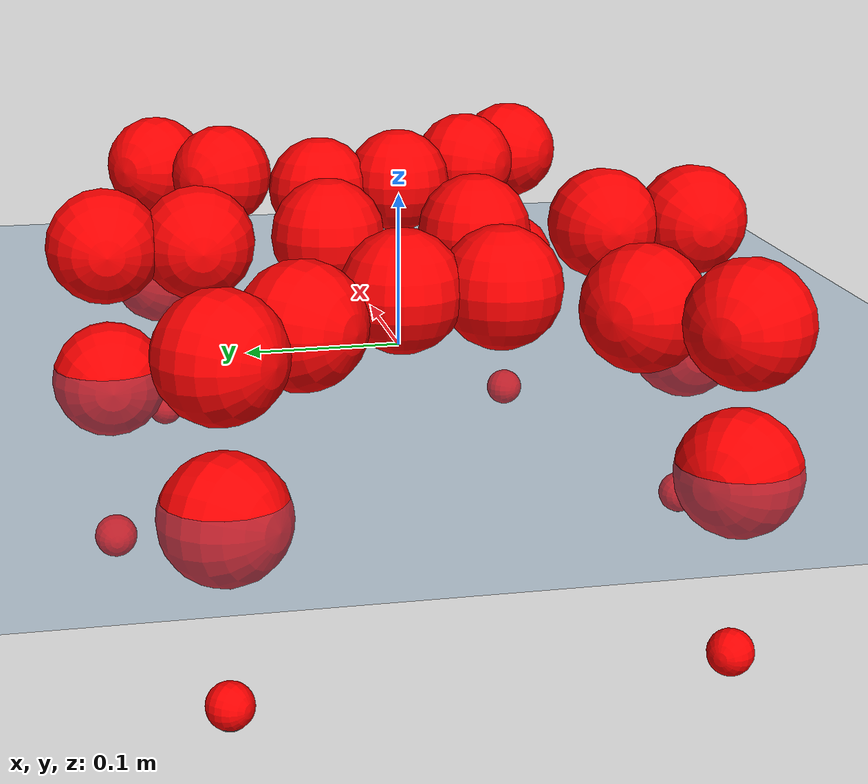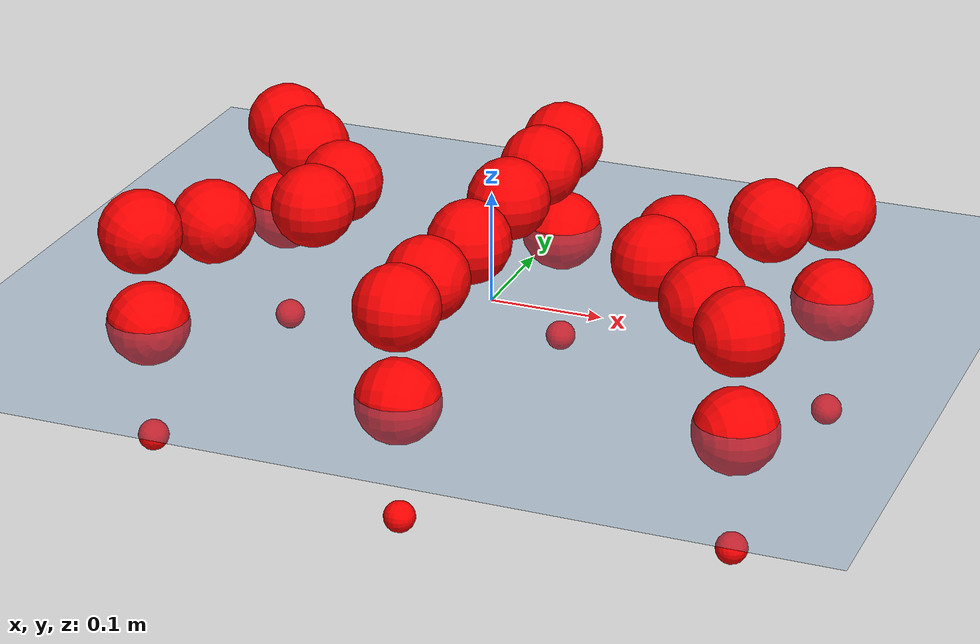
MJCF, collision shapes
<mujoco model="Golem">
  <compiler angle="radian" assetdir="assets" balanceinertia="true" inertiafromgeom="false"/>

  <option timestep="0.005" density="1.2" viscosity="2e-05"/>

  <size nkey="1"/>

  <visual>
    <quality shadowsize="8192"/>
    <map shadowclip="0.5"/>
  </visual>

  <default>
    <default class="/">
      <joint armature="0.01" damping="0.01" frictionloss="0.01"/>
      <geom contype="0" conaffinity="0" group="1" solref="-1000 -80"/>
      <site size="0.01 0.005 0.005" group="5"/>
      <general forcelimited="true" biastype="affine" gainprm="25" biasprm="0 -25 -0.5"/>
      <default class="visual">
        <geom type="mesh" group="2"/>
      </default>
      <default class="collision">
        <geom group="3"/>
      </default>
      <default class="foot">
        <geom size="0.01 0 0" condim="6" group="4" priority="1" solimp="0.015 1 0.01"/>
      </default>
      <default class="reward_collision_sphere">
        <geom group="5" rgba="1 0 0 1"/>
      </default>
    </default>
  </default>

  <asset>
    <texture type="skybox" colorspace="auto" name="//unnamed_texture_0" builtin="gradient" rgb1="0.95 0.95 0.95" rgb2="0.95 0.95 0.95" width="100" height="600"/>
    <texture type="2d" colorspace="auto" name="texplane" builtin="checker" rgb1="0.345 0.575 0.748" rgb2="0.345 0.575 0.748" markrgb="1 1 1" width="512" height="512"/>
    <material name="MatPlane" class="/" texture="texplane" texuniform="true" texrepeat="2 2" specular="0.9"/>
    <mesh name="body" class="/" file="body.stl" scale="0.001 0.001 0.001"/>
    <mesh name="coxa" class="/" file="coxa.stl" scale="0.001 0.001 0.001"/>
    <mesh name="femur" class="/" file="femur.stl" scale="0.001 0.001 0.001"/>
    <mesh name="tibia" class="/" file="tibia.stl" scale="0.001 0.001 0.001"/>
    <mesh name="tarsus" class="/" file="tarsus.stl" scale="0.001 0.001 0.001"/>
  </asset>

  <worldbody>
    <geom name="floor" class="/" size="100 100 0.125" type="plane" group="0" material="MatPlane"/>
    <light name="toplight_shadow" class="/" pos="0 0 5" dir="0.0990148 0.0990148 -0.990148" type="directional" ambient="0.04 0.04 0.04" diffuse="0.55 0.55 0.55" specular="0.12 0.12 0.12"/>
    <light name="toplight_fill" class="/" pos="0 0 5" dir="0.0990148 0.0990148 -0.990148" type="directional" castshadow="false" ambient="0.04 0.04 0.04" diffuse="0.3 0.3 0.3" specular="0.08 0.08 0.08"/>
    <body name="trunk" pos="0.000452867 -0.000635563 0.00102246" quat="1 -0.000187186 0.000354138 -0.000320371">
      <inertial pos="0.00200808 -0.001519 -0.000826758" quat="1 7.23657e-05 -0.000656557 -0.000150705" mass="2.9026" diaginertia="0.0101651 0.000700459 0.0214102"/>
      <joint name="//unnamed_joint_0" type="free"/>
      <geom name="//unnamed_geom_1" class="/" pos="0 0 0.0738411" quat="1 0 0 0" type="mesh" rgba="0.9 0.9 0.9 1" mesh="body"/>
      <site name="imu" class="/" pos="0.130898 -0.00182653 0.103117" size="0.00909577"/>
      <camera name="track" class="/" pos="0 -1.16822 0" quat="0.707107 0.707107 0 0" mode="trackcom"/>
      <camera name="ego_camera" class="/" pos="0.128811 0 0.115377" quat="-0.5 -0.5 0.5 0.5"/>
      <body name="coxa_RR" pos="-0.175627 -0.0497411 0.0750547" quat="0.38283 -2.29271e-05 -0.000113594 -0.923819">
        <inertial pos="-0.000105016 -0.000188162 0.000725311" quat="0.999999 0.000322648 -0.00125813 -0.00100563" mass="0.149646" diaginertia="0.0095394 0.000677643 0.0202144"/>
        <joint name="coxa_joint_RR" class="/" pos="0 0 0" axis="-0.00867352 0.00416064 -0.999954" range="-3.15691 3.14173" armature="0.00889985" damping="0" frictionloss="0.00902628"/>
        <geom name="//unnamed_geom_2" class="/" type="mesh" rgba="0.2 0.2 0.2 1" mesh="coxa"/>
        <geom name="//unnamed_geom_3" class="reward_collision_sphere" size="0.0363831" pos="-0.0297256 0 0"/>
        <body name="femur_RR" pos="0.0612642 0.000974698 0.000839827" quat="0.500062 -0.499996 0.500059 0.499883">
          <inertial pos="-0.00106466 -0.000470299 -0.00036202" quat="0.999999 -0.00105986 -0.000751546 0.000538747" mass="0.147837" diaginertia="0.00958169 0.00066234 0.0199096"/>
          <joint name="femur_joint_RR" class="/" pos="0 0 0" axis="0.0123644 -0.00285411 -0.999919" range="-3.13893 3.11929" armature="0.00906684" damping="0" frictionloss="0.00889794"/>
          <geom name="//unnamed_geom_4" class="/" type="mesh" rgba="0.9 0.9 0.9 1" mesh="femur"/>
          <geom name="//unnamed_geom_5" class="reward_collision_sphere" size="0.0363831"/>
          <body name="tibia_RR" pos="-0.00078448 -0.0637441 -0.00161079" quat="-5.28153e-05 1 -9.77007e-06 -6.81085e-05">
            <inertial pos="-0.000483744 -0.00236747 0.00035267" quat="0.999918 0.0104727 -0.00549508 -0.00484297" mass="0.150655" diaginertia="0.00975576 0.000679208 0.0201065"/>
            <joint name="tibia_joint_RR" class="/" pos="0 0 0" axis="0.00677423 -0.000501044 0.999977" range="-3.11954 3.1593" armature="0.00910573" damping="0.00476059" frictionloss="0.00945491"/>
            <geom name="//unnamed_geom_6" class="/" type="mesh" rgba="0.2 0.2 0.2 1" mesh="tibia"/>
            <geom name="//unnamed_geom_7" class="reward_collision_sphere" size="0.0363831"/>
            <body name="tarsus_RR" pos="0.0852626 -0.00257925 -0.00115922" quat="1 3.82621e-05 8.61801e-05 8.5856e-05">
              <inertial pos="0.0595328 0.000800239 -0.00111842" quat="0.505789 0.491216 0.504563 0.498298" mass="0.155145" diaginertia="0.00972498 0.000689124 0.020079"/>
              <joint name="tarsus_joint_RR" class="/" pos="0 0 0" axis="-0.000744825 0.000276089 1" range="-3.15892 3.1493" armature="0.00956084" damping="0.00115191" frictionloss="0.00988245"/>
              <geom name="//unnamed_geom_8" class="/" type="mesh" rgba="0.9 0.9 0.9 1" mesh="tarsus"/>
              <geom name="foot_1" class="foot" size="0.00903576" pos="0.110975 0 0" quat="0 -0.707107 0 0.707107"/>
              <geom name="//unnamed_geom_10" class="reward_collision_sphere" size="0.0363831"/>
              <geom name="//unnamed_geom_11" class="reward_collision_sphere" size="0.0136436" pos="0.106517 0 0"/>
              <site name="foot_1" class="foot" pos="0.110975 0 0" quat="0 -0.707107 0 0.707107" size="0.00909577"/>
            </body>
          </body>
        </body>
      </body>
      <body name="coxa_RM" pos="-0.00115568 -0.0788326 0.0738831" quat="0.70694 0.00061229 0.000934968 -0.707272">
        <inertial pos="0.00148873 8.97147e-05 -0.00163468" quat="1 -4.28543e-05 -3.45676e-05 0.000109561" mass="0.152274" diaginertia="0.00959172 0.000695219 0.0202833"/>
        <joint name="coxa_joint_RM" class="/" pos="0 0 0" axis="0.00187093 -0.00118176 -0.999998" range="-3.12934 3.14382" armature="0.00975304" damping="0.0181514" frictionloss="0.00871344"/>
        <geom name="//unnamed_geom_12" class="/" type="mesh" rgba="0.2 0.2 0.2 1" mesh="coxa"/>
        <geom name="//unnamed_geom_13" class="reward_collision_sphere" size="0.0363831" pos="-0.0297256 0 0"/>
        <body name="femur_RM" pos="0.056294 -0.0027957 0.00127207" quat="0.499808 -0.500365 0.500035 0.499792">
          <inertial pos="0.00247099 -0.0008776 -0.000294372" quat="0.999989 0.00224453 0.00267065 -0.00313952" mass="0.145804" diaginertia="0.00899821 0.000659729 0.019211"/>
          <joint name="femur_joint_RM" class="/" pos="0 0 0" axis="-0.00447509 0.00371508 -0.999983" range="-3.13686 3.09082" armature="0.0086446" damping="0.0149473" frictionloss="0.00901943"/>
          <geom name="//unnamed_geom_14" class="/" type="mesh" rgba="0.9 0.9 0.9 1" mesh="femur"/>
          <geom name="//unnamed_geom_15" class="reward_collision_sphere" size="0.0363831"/>
          <body name="tibia_RM" pos="-3.91735e-05 -0.0606907 -0.000794412" quat="0.000182513 1 0.000213305 -5.92856e-05">
            <inertial pos="-0.000672702 0.00282379 0.00049847" quat="0.999996 -0.00155437 0.00154364 0.00150876" mass="0.148328" diaginertia="0.00950221 0.00067387 0.0202077"/>
            <joint name="tibia_joint_RM" class="/" pos="0 0 0" axis="-0.00151786 0.000237755 0.999999" range="-3.12991 3.15434" armature="0.00956973" damping="0.0208201" frictionloss="0.0091976"/>
            <geom name="//unnamed_geom_16" class="/" type="mesh" rgba="0.2 0.2 0.2 1" mesh="tibia"/>
            <geom name="//unnamed_geom_17" class="reward_collision_sphere" size="0.0363831"/>
            <body name="tarsus_RM" pos="0.0844411 -0.00158767 0.000420867" quat="1 -9.26178e-06 5.9091e-06 3.33951e-05">
              <inertial pos="0.0615808 -0.000221514 -0.00081044" quat="0.500594 0.501443 0.499773 0.498184" mass="0.155497" diaginertia="0.00954039 0.00068024 0.0211019"/>
              <joint name="tarsus_joint_RM" class="/" pos="0 0 0" axis="-0.0061869 -0.000956264 0.99998" range="-3.1719 3.09966" armature="0.00919427" damping="0.00723497" frictionloss="0.00835612"/>
              <geom name="//unnamed_geom_18" class="/" type="mesh" rgba="0.9 0.9 0.9 1" mesh="tarsus"/>
              <geom name="foot_2" class="foot" size="0.00947551" pos="0.110975 0 0" quat="0 -0.707107 0 0.707107"/>
              <geom name="//unnamed_geom_20" class="reward_collision_sphere" size="0.0363831"/>
              <geom name="//unnamed_geom_21" class="reward_collision_sphere" size="0.0136436" pos="0.106517 0 0"/>
              <site name="foot_2" class="foot" pos="0.110975 0 0" quat="0 -0.707107 0 0.707107" size="0.00909577"/>
            </body>
          </body>
        </body>
      </body>
      <body name="coxa_RF" pos="0.177031 -0.0507489 0.0765034" quat="0.923907 -0.000213022 0.000183527 -0.382616">
        <inertial pos="0.00113937 -0.00248887 0.00183006" quat="0.999928 -0.0119701 -0.00063432 -0.000747382" mass="0.144729" diaginertia="0.00949059 0.000668195 0.0201289"/>
        <joint name="coxa_joint_RF" class="/" pos="0 0 0" axis="-0.00572332 0.00124768 -0.999983" range="-3.08879 3.13866" armature="0.00820638" damping="0" frictionloss="0.00897453"/>
        <geom name="//unnamed_geom_22" class="/" type="mesh" rgba="0.2 0.2 0.2 1" mesh="coxa"/>
        <geom name="//unnamed_geom_23" class="reward_collision_sphere" size="0.0363831" pos="-0.0297256 0 0"/>
        <body name="femur_RF" pos="0.0599423 7.9352e-06 -0.000927555" quat="0.49992 -0.500026 0.500034 0.50002">
          <inertial pos="-0.00133118 0.00228365 0.000532483" quat="0.999986 0.00307585 -0.000756869 -0.00418582" mass="0.150726" diaginertia="0.00989118 0.000700018 0.0213701"/>
          <joint name="femur_joint_RF" class="/" pos="0 0 0" axis="-0.00016191 -0.000300392 -1" range="-3.14791 3.14151" armature="0.0091654" damping="0.00756008" frictionloss="0.00918274"/>
          <geom name="//unnamed_geom_24" class="/" type="mesh" rgba="0.9 0.9 0.9 1" mesh="femur"/>
          <geom name="//unnamed_geom_25" class="reward_collision_sphere" size="0.0363831"/>
          <body name="tibia_RF" pos="0.000552507 -0.0635878 -0.000578903" quat="-0.00010804 1 -5.05889e-05 0.000203149">
            <inertial pos="0.000144709 -0.000266994 -0.00263204" quat="0.999942 -0.00981816 -0.00436152 -0.000375178" mass="0.153072" diaginertia="0.00979863 0.000668463 0.0211671"/>
            <joint name="tibia_joint_RF" class="/" pos="0 0 0" axis="0.00551334 -0.0010202 0.999984" range="-3.14575 3.14168" armature="0.00905243" damping="0.0107807" frictionloss="0.00923512"/>
            <geom name="//unnamed_geom_26" class="/" type="mesh" rgba="0.2 0.2 0.2 1" mesh="tibia"/>
            <geom name="//unnamed_geom_27" class="reward_collision_sphere" size="0.0363831"/>
            <body name="tarsus_RF" pos="0.0872805 0.000495867 -0.000418201" quat="1 -0.000735386 -0.000134624 0.0002274">
              <inertial pos="0.0597568 -0.000659478 -0.00100219" quat="0.49944 0.501502 0.499458 0.499596" mass="0.152167" diaginertia="0.00974361 0.000664934 0.0199267"/>
              <joint name="tarsus_joint_RF" class="/" pos="0 0 0" axis="-0.000254272 0.00193354 0.999998" stiffness="0.0238699" range="-3.10613 3.13955" armature="0.0085928" damping="0" frictionloss="0.00878867"/>
              <geom name="//unnamed_geom_28" class="/" type="mesh" rgba="0.9 0.9 0.9 1" mesh="tarsus"/>
              <geom name="foot_3" class="foot" size="0.00943057" pos="0.110975 0 0" quat="0 -0.707107 0 0.707107"/>
              <geom name="//unnamed_geom_30" class="reward_collision_sphere" size="0.0363831"/>
              <geom name="//unnamed_geom_31" class="reward_collision_sphere" size="0.0136436" pos="0.106517 0 0"/>
              <site name="foot_3" class="foot" pos="0.110975 0 0" quat="0 -0.707107 0 0.707107" size="0.00909577"/>
            </body>
          </body>
        </body>
      </body>
      <body name="coxa_LR" pos="-0.174346 0.0502586 0.0754859" quat="0.382362 4.57501e-05 7.28608e-05 0.924013">
        <inertial pos="-0.0011192 -0.00210667 -0.000760254" quat="0.999969 0.00457446 0.00350749 -0.00530499" mass="0.14689" diaginertia="0.00969242 0.000656675 0.0194392"/>
        <joint name="coxa_joint_LR" class="/" pos="0 0 0" axis="-0.000855537 -0.00214288 -0.999997" range="-3.14505 3.13221" armature="0.0088093" damping="0.0180171" frictionloss="0.00934925"/>
        <geom name="//unnamed_geom_32" class="/" type="mesh" rgba="0.2 0.2 0.2 1" mesh="coxa"/>
        <geom name="//unnamed_geom_33" class="reward_collision_sphere" size="0.0363831" pos="-0.0297256 0 0"/>
        <body name="femur_LR" pos="0.0617087 -0.00355633 2.34339e-05" quat="0.500531 -0.499974 0.499531 0.499964">
          <inertial pos="-4.29544e-05 -0.00273213 -0.000511701" quat="1 2.09485e-05 -0.000198489 -0.000113529" mass="0.150353" diaginertia="0.00924523 0.000689405 0.0197766"/>
          <joint name="femur_joint_LR" class="/" pos="0 0 0" axis="0.0003166 0.000688223 1" range="-3.09443 3.13673" armature="0.00905946" damping="0" frictionloss="0.00909977"/>
          <geom name="//unnamed_geom_34" class="/" type="mesh" rgba="0.9 0.9 0.9 1" mesh="femur"/>
          <geom name="//unnamed_geom_35" class="reward_collision_sphere" size="0.0363831"/>
          <body name="tibia_LR" pos="0.00216454 -0.0656592 -0.00356582" quat="9.68533e-06 1 -2.10887e-05 -0.000137193">
            <inertial pos="0.000173355 -0.00172939 0.000378965" quat="0.999942 -0.00719322 0.00215517 0.00772696" mass="0.148449" diaginertia="0.00922238 0.000667634 0.0201987"/>
            <joint name="tibia_joint_LR" class="/" pos="0 0 0" axis="0.00121403 0.00155167 -0.999998" range="-3.13521 3.18628" armature="0.00861202" damping="0" frictionloss="0.00912077"/>
            <geom name="//unnamed_geom_36" class="/" type="mesh" rgba="0.2 0.2 0.2 1" mesh="tibia"/>
            <geom name="//unnamed_geom_37" class="reward_collision_sphere" size="0.0363831"/>
            <body name="tarsus_LR" pos="0.0870878 0.00188984 -0.00194491" quat="1 0.000597589 6.16011e-05 0.000179936">
              <inertial pos="0.0623527 -0.00219246 -0.00210888" quat="0.499542 0.49805 0.499886 0.502512" mass="0.150665" diaginertia="0.0094379 0.00067652 0.0197803"/>
              <joint name="tarsus_joint_LR" class="/" pos="0 0 0" axis="-0.00313186 -0.0143116 -0.999893" range="-3.12831 3.1279" armature="0.00849155" damping="0" frictionloss="0.00885775"/>
              <geom name="//unnamed_geom_38" class="/" type="mesh" rgba="0.9 0.9 0.9 1" mesh="tarsus"/>
              <geom name="foot_4" class="foot" size="0.0100278" pos="0.110975 0 0" quat="0.707107 0 -0.707107 0"/>
              <geom name="//unnamed_geom_40" class="reward_collision_sphere" size="0.0363831"/>
              <geom name="//unnamed_geom_41" class="reward_collision_sphere" size="0.0136436" pos="0.106517 0 0"/>
              <site name="foot_4" class="foot" pos="0.110975 0 0" quat="0.707107 0 -0.707107 0" size="0.00909577"/>
            </body>
          </body>
        </body>
      </body>
      <body name="coxa_LM" pos="-0.0033964 0.0771494 0.0753903" quat="0.707412 0.000251336 -0.00022324 0.706801">
        <inertial pos="0.00128225 -0.00136439 -0.000524481" quat="0.99994 -0.00957167 0.00449663 0.00278152" mass="0.151784" diaginertia="0.00973413 0.000702553 0.0211295"/>
        <joint name="coxa_joint_LM" class="/" pos="0 0 0" axis="0.00654527 -0.0114641 -0.999913" range="-3.13082 3.11883" armature="0.00862974" damping="0.00635419" frictionloss="0.00937811"/>
        <geom name="//unnamed_geom_42" class="/" type="mesh" rgba="0.2 0.2 0.2 1" mesh="coxa"/>
        <geom name="//unnamed_geom_43" class="reward_collision_sphere" size="0.0363831" pos="-0.0297256 0 0"/>
        <body name="femur_LM" pos="0.0535895 0.00174123 -0.000941349" quat="0.50009 -0.500062 0.499951 0.499897">
          <inertial pos="0.00113806 0.000338077 0.00107028" quat="0.99997 0.0015024 -0.00699078 -0.00299191" mass="0.15252" diaginertia="0.00945629 0.000715641 0.0211234"/>
          <joint name="femur_joint_LM" class="/" pos="0 0 0" axis="0.00233126 0.00119647 0.999997" range="-3.16071 3.14709" armature="0.00940773" damping="0.00241292" frictionloss="0.00857519"/>
          <geom name="//unnamed_geom_44" class="/" type="mesh" rgba="0.9 0.9 0.9 1" mesh="femur"/>
          <geom name="//unnamed_geom_45" class="reward_collision_sphere" size="0.0363831"/>
          <body name="tibia_LM" pos="-0.000777757 -0.0585579 0.00132733" quat="0.000325504 1 -0.000809869 -0.000167333">
            <inertial pos="0.000587911 -0.000186615 -0.00211825" quat="0.999934 -0.00412358 -0.00542571 0.00929951" mass="0.150168" diaginertia="0.00953449 0.000705258 0.0208122"/>
            <joint name="tibia_joint_LM" class="/" pos="0 0 0" axis="-0.00223778 -0.00230221 -0.999995" range="-3.1349 3.13804" armature="0.00922658" damping="0" frictionloss="0.00826526"/>
            <geom name="//unnamed_geom_46" class="/" type="mesh" rgba="0.2 0.2 0.2 1" mesh="tibia"/>
            <geom name="//unnamed_geom_47" class="reward_collision_sphere" size="0.0363831"/>
            <body name="tarsus_LM" pos="0.0862897 -0.000511928 -0.000251475" quat="1 -0.00034612 1.6439e-05 0.0008462">
              <inertial pos="0.0603875 -0.00123098 0.000216601" quat="0.495218 0.499349 0.509689 0.495607" mass="0.154219" diaginertia="0.00983582 0.000684646 0.0203711"/>
              <joint name="tarsus_joint_LM" class="/" pos="0 0 0" axis="-0.00901897 -0.00595605 -0.999942" stiffness="0.00218191" range="-3.13293 3.12972" armature="0.00890852" damping="0" frictionloss="0.0101361"/>
              <geom name="//unnamed_geom_48" class="/" type="mesh" rgba="0.9 0.9 0.9 1" mesh="tarsus"/>
              <geom name="foot_5" class="foot" size="0.00901299" pos="0.110975 0 0" quat="0.707107 0 -0.707107 0"/>
              <geom name="//unnamed_geom_50" class="reward_collision_sphere" size="0.0363831"/>
              <geom name="//unnamed_geom_51" class="reward_collision_sphere" size="0.0136436" pos="0.106517 0 0"/>
              <site name="foot_5" class="foot" pos="0.110975 0 0" quat="0.707107 0 -0.707107 0" size="0.00909577"/>
            </body>
          </body>
        </body>
      </body>
      <body name="coxa_LF" pos="0.178504 0.0478431 0.0724006" quat="0.923869 -0.000152077 0.000296416 0.38271">
        <inertial pos="-0.000570478 0.000417635 0.00223158" quat="0.999973 -0.00484888 0.0049888 -0.00255656" mass="0.14812" diaginertia="0.00921191 0.000695559 0.0200744"/>
        <joint name="coxa_joint_LF" class="/" pos="0 0 0" axis="-0.00989528 -0.00980271 -0.999903" range="-3.12937 3.13594" armature="0.0082274" damping="0" frictionloss="0.0102816"/>
        <geom name="//unnamed_geom_52" class="/" type="mesh" rgba="0.2 0.2 0.2 1" mesh="coxa"/>
        <geom name="//unnamed_geom_53" class="reward_collision_sphere" size="0.0363831" pos="-0.0297256 0 0"/>
        <body name="femur_LF" pos="0.0590634 0.000642883 0.000389453" quat="0.50004 -0.49997 0.499887 0.500103">
          <inertial pos="-0.00266251 0.000183816 0.00258282" quat="0.999997 -0.00072909 -0.0010624 -0.00194184" mass="0.151966" diaginertia="0.00989911 0.000684493 0.0205066"/>
          <joint name="femur_joint_LF" class="/" pos="0 0 0" axis="0.0034232 -0.00237497 0.999991" range="-3.12934 3.12808" armature="0.00941746" damping="0" frictionloss="0.00864249"/>
          <geom name="//unnamed_geom_54" class="/" type="mesh" rgba="0.9 0.9 0.9 1" mesh="femur"/>
          <geom name="//unnamed_geom_55" class="reward_collision_sphere" size="0.0363831"/>
          <body name="tibia_LF" pos="-0.000563409 -0.0623863 0.00048354" quat="3.51604e-05 1 -8.47378e-05 -0.000199785">
            <inertial pos="0.000514887 -0.00238051 4.41583e-05" quat="1 0.000169771 -0.000477416 0.00023494" mass="0.144281" diaginertia="0.00894323 0.000658522 0.019541"/>
            <joint name="tibia_joint_LF" class="/" pos="0 0 0" axis="0.00278161 -0.00447849 -0.999986" range="-3.1389 3.13878" armature="0.00968211" damping="0" frictionloss="0.00918705"/>
            <geom name="//unnamed_geom_56" class="/" type="mesh" rgba="0.2 0.2 0.2 1" mesh="tibia"/>
            <geom name="//unnamed_geom_57" class="reward_collision_sphere" size="0.0363831"/>
            <body name="tarsus_LF" pos="0.0852404 0.000897642 0.0019006" quat="1 0.000142004 0.000158583 7.01081e-05">
              <inertial pos="0.0593196 0.000929856 0.000364113" quat="0.503193 0.499468 0.499931 0.497391" mass="0.142657" diaginertia="0.00915188 0.00064291 0.0196562"/>
              <joint name="tarsus_joint_LF" class="/" pos="0 0 0" axis="0.00200004 0.00143152 -0.999997" stiffness="0.00139949" range="-3.1552 3.13362" armature="0.00995509" damping="0.0124733" frictionloss="0.00792155"/>
              <geom name="//unnamed_geom_58" class="/" type="mesh" rgba="0.9 0.9 0.9 1" mesh="tarsus"/>
              <geom name="foot_6" class="foot" size="0.00874735" pos="0.110975 0 0" quat="0.707107 0 -0.707107 0"/>
              <geom name="//unnamed_geom_60" class="reward_collision_sphere" size="0.0363831"/>
              <geom name="//unnamed_geom_61" class="reward_collision_sphere" size="0.0136436" pos="0.106517 0 0"/>
              <site name="foot_6" class="foot" pos="0.110975 0 0" quat="0.707107 0 -0.707107 0" size="0.00909577"/>
            </body>
          </body>
        </body>
      </body>
    </body>
  </worldbody>

  <contact>
    <pair class="/" geom1="floor" geom2="foot_1" name="//unnamed_contact_0"/>
    <pair class="/" geom1="floor" geom2="foot_2" name="//unnamed_contact_1"/>
    <pair class="/" geom1="floor" geom2="foot_3" name="//unnamed_contact_2"/>
    <pair class="/" geom1="floor" geom2="foot_4" name="//unnamed_contact_3"/>
    <pair class="/" geom1="floor" geom2="foot_5" name="//unnamed_contact_4"/>
    <pair class="/" geom1="floor" geom2="foot_6" name="//unnamed_contact_5"/>
  </contact>

  <actuator>
    <general name="coxa_joint_RR" class="/" joint="coxa_joint_RR" forcerange="-6.8636 6.8636" gainprm="22.7915" biasprm="0 -22.7915 -0.487411"/>
    <general name="femur_joint_RR" class="/" joint="femur_joint_RR" forcerange="-6.56831 6.56831" gainprm="22.7915" biasprm="0 -22.7915 -0.487411"/>
    <general name="tibia_joint_RR" class="/" joint="tibia_joint_RR" forcerange="-6.90284 6.90284" gainprm="22.7915" biasprm="0 -22.7915 -0.487411"/>
    <general name="tarsus_joint_RR" class="/" joint="tarsus_joint_RR" forcerange="-7.19165 7.19165" gainprm="22.7915" biasprm="0 -22.7915 -0.487411"/>
    <general name="coxa_joint_RM" class="/" joint="coxa_joint_RM" forcerange="-6.69394 6.69394" gainprm="22.7915" biasprm="0 -22.7915 -0.487411"/>
    <general name="femur_joint_RM" class="/" joint="femur_joint_RM" forcerange="-6.65115 6.65115" gainprm="22.7915" biasprm="0 -22.7915 -0.487411"/>
    <general name="tibia_joint_RM" class="/" joint="tibia_joint_RM" forcerange="-6.55854 6.55854" gainprm="22.7915" biasprm="0 -22.7915 -0.487411"/>
    <general name="tarsus_joint_RM" class="/" joint="tarsus_joint_RM" forcerange="-7.27397 7.27397" gainprm="22.7915" biasprm="0 -22.7915 -0.487411"/>
    <general name="coxa_joint_RF" class="/" joint="coxa_joint_RF" forcerange="-6.68007 6.68007" gainprm="22.7915" biasprm="0 -22.7915 -0.487411"/>
    <general name="femur_joint_RF" class="/" joint="femur_joint_RF" forcerange="-6.02823 6.02823" gainprm="22.7915" biasprm="0 -22.7915 -0.487411"/>
    <general name="tibia_joint_RF" class="/" joint="tibia_joint_RF" forcerange="-6.85394 6.85394" gainprm="22.7915" biasprm="0 -22.7915 -0.487411"/>
    <general name="tarsus_joint_RF" class="/" joint="tarsus_joint_RF" forcerange="-6.35266 6.35266" gainprm="22.7915" biasprm="0 -22.7915 -0.487411"/>
    <general name="coxa_joint_LR" class="/" joint="coxa_joint_LR" forcerange="-6.51286 6.51286" gainprm="22.7915" biasprm="0 -22.7915 -0.487411"/>
    <general name="femur_joint_LR" class="/" joint="femur_joint_LR" forcerange="-6.74983 6.74983" gainprm="22.7915" biasprm="0 -22.7915 -0.487411"/>
    <general name="tibia_joint_LR" class="/" joint="tibia_joint_LR" forcerange="-6.60341 6.60341" gainprm="22.7915" biasprm="0 -22.7915 -0.487411"/>
    <general name="tarsus_joint_LR" class="/" joint="tarsus_joint_LR" forcerange="-6.5041 6.5041" gainprm="22.7915" biasprm="0 -22.7915 -0.487411"/>
    <general name="coxa_joint_LM" class="/" joint="coxa_joint_LM" forcerange="-6.79089 6.79089" gainprm="22.7915" biasprm="0 -22.7915 -0.487411"/>
    <general name="femur_joint_LM" class="/" joint="femur_joint_LM" forcerange="-6.43136 6.43136" gainprm="22.7915" biasprm="0 -22.7915 -0.487411"/>
    <general name="tibia_joint_LM" class="/" joint="tibia_joint_LM" forcerange="-6.83369 6.83369" gainprm="22.7915" biasprm="0 -22.7915 -0.487411"/>
    <general name="tarsus_joint_LM" class="/" joint="tarsus_joint_LM" forcerange="-6.84318 6.84318" gainprm="22.7915" biasprm="0 -22.7915 -0.487411"/>
    <general name="coxa_joint_LF" class="/" joint="coxa_joint_LF" forcerange="-6.10238 6.10238" gainprm="22.7915" biasprm="0 -22.7915 -0.487411"/>
    <general name="femur_joint_LF" class="/" joint="femur_joint_LF" forcerange="-6.50733 6.50733" gainprm="22.7915" biasprm="0 -22.7915 -0.487411"/>
    <general name="tibia_joint_LF" class="/" joint="tibia_joint_LF" forcerange="-6.76279 6.76279" gainprm="22.7915" biasprm="0 -22.7915 -0.487411"/>
    <general name="tarsus_joint_LF" class="/" joint="tarsus_joint_LF" forcerange="-6.86281 6.86281" gainprm="22.7915" biasprm="0 -22.7915 -0.487411"/>
  </actuator>

  <sensor>
    <gyro site="imu" name="imu_angular_velocity"/>
    <velocimeter site="imu" name="imu_linear_velocity"/>
    <framelinvel objtype="site" objname="foot_1" name="foot_1_global_linear_velocity"/>
    <framelinvel objtype="site" objname="foot_2" name="foot_2_global_linear_velocity"/>
    <framelinvel objtype="site" objname="foot_3" name="foot_3_global_linear_velocity"/>
    <framelinvel objtype="site" objname="foot_4" name="foot_4_global_linear_velocity"/>
    <framelinvel objtype="site" objname="foot_5" name="foot_5_global_linear_velocity"/>
    <framelinvel objtype="site" objname="foot_6" name="foot_6_global_linear_velocity"/>
  </sensor>

  <keyframe>
    <key name="home" qpos="0 0 0.1457 1 0 0 0 0 0 0 0 0 0 0 0 0 0 0 0 0 0 0 0 0 0 0 0 0 0 0 0"/>
  </keyframe>
</mujoco>
